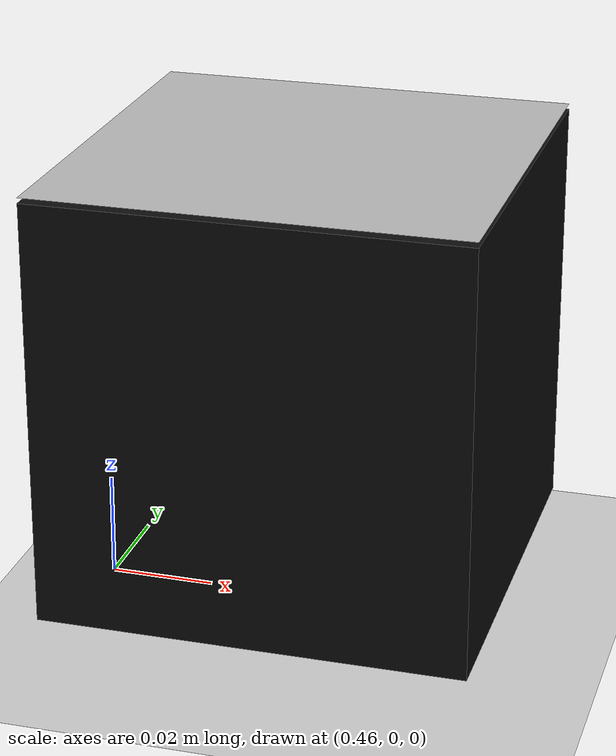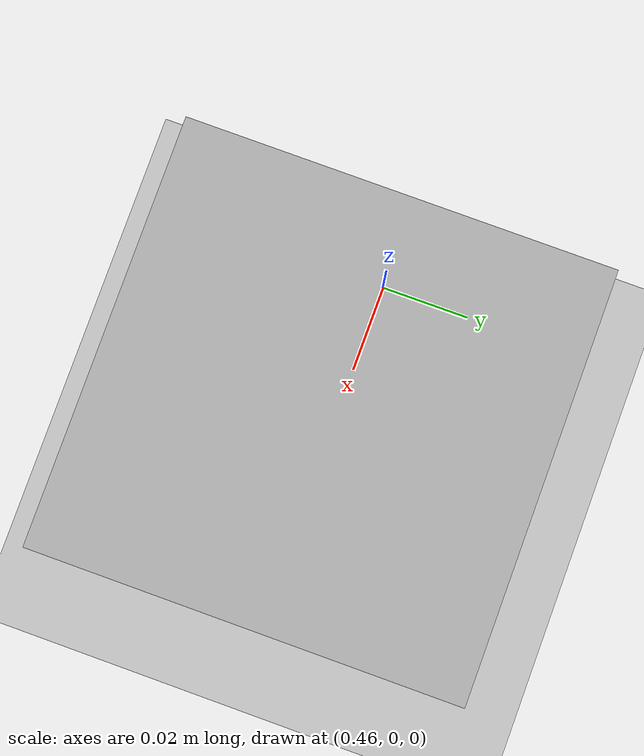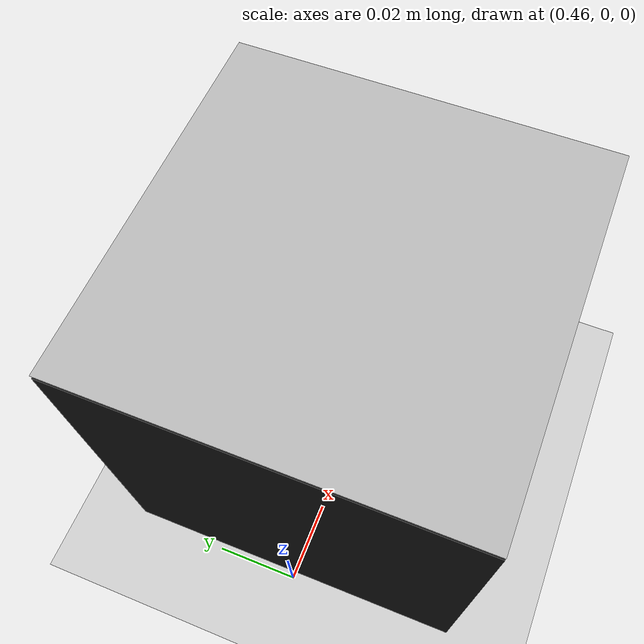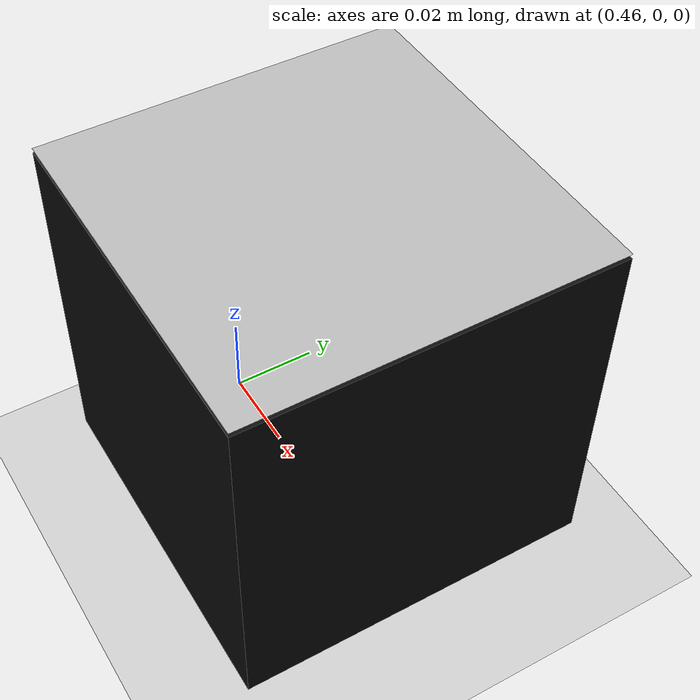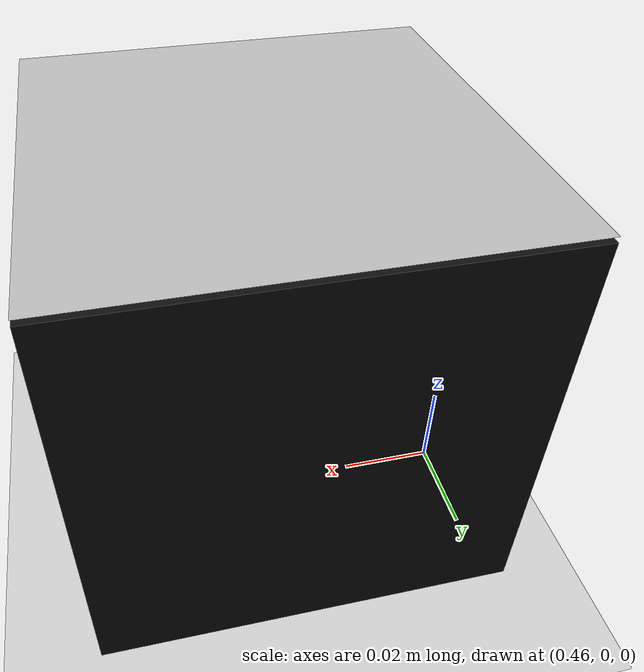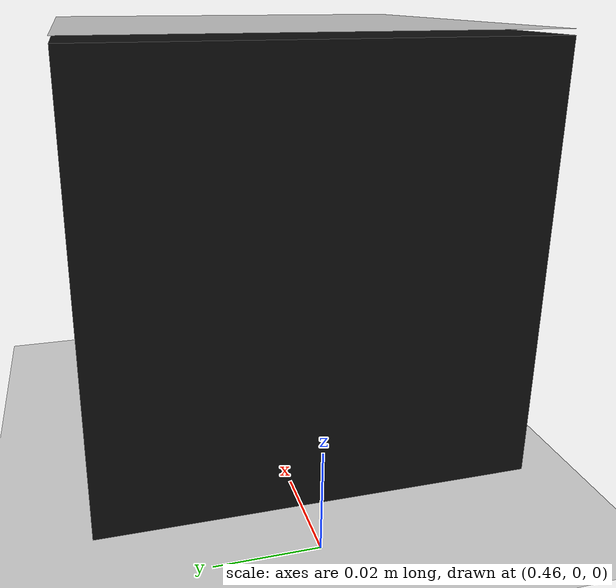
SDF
<sdf version="1.6">
  <world name="empty_with_camera_support">
    <physics name="1ms" type="ignored">
      <max_step_size>0.001</max_step_size>
      <real_time_factor>1.0</real_time_factor>
    </physics>
    <plugin
      filename="ignition-gazebo-physics-system"
      name="gz::sim::systems::Physics">
    </plugin>
    <plugin
      filename="ignition-gazebo-user-commands-system"
      name="gz::sim::systems::UserCommands">
    </plugin>
    <plugin
      filename="ignition-gazebo-scene-broadcaster-system"
      name="gz::sim::systems::SceneBroadcaster">
    </plugin>
    <plugin
      filename="ignition-gazebo-contact-system"
      name="gz::sim::systems::Contact">
    </plugin>
    <plugin
      filename="ignition-gazebo-sensors-system"
      name="gz::sim::systems::Sensors">
      <render_engine>ogre2</render_engine>
    </plugin>

    <light type="directional" name="sun">
      <cast_shadows>true</cast_shadows>
      <pose>0 0 10 0 0 0</pose>
      <diffuse>0.8 0.8 0.8 1</diffuse>
      <specular>0.2 0.2 0.2 1</specular>
      <attenuation>
        <range>1000</range>
        <constant>0.9</constant>
        <linear>0.01</linear>
        <quadratic>0.001</quadratic>
      </attenuation>
      <direction>-0.5 0.1 -0.9</direction>
    </light>

    <model name="ground_plane">
      <static>true</static>
      <link name="link">
        <collision name="collision">
          <geometry>
            <plane>
              <normal>0 0 1</normal>
              <size>100 100</size>
            </plane>
          </geometry>
        </collision>
        <visual name="visual">
          <geometry>
            <plane>
              <normal>0 0 1</normal>
              <size>100 100</size>
            </plane>
          </geometry>
          <material>
            <ambient>0.8 0.8 0.8 1</ambient>
            <diffuse>0.8 0.8 0.8 1</diffuse>
            <specular>0.8 0.8 0.8 1</specular>
          </material>
        </visual>
      </link>
    </model>

    <model name="cubo">
      <static>true</static>
      <pose>0.5 0 0.05 0 0 0</pose>
      <link name="link">
        <visual name="visual">
          <geometry>
            <box>
              <size>0.08 0.08 0.08</size>
            </box>
          </geometry>
          <material>
            <ambient>0.05 0.05 0.05 1</ambient>
            <diffuse>0.05 0.05 0.05 1</diffuse>
            <specular>0.05 0.05 0.05 1</specular>
          </material>
        </visual>
        <collision name="collision">
          <geometry>
            <box>
              <size>0.1 0.1 0.1</size>
            </box>
          </geometry>
        </collision>
        <visual name="aruco_marker">
          <pose>0 0 0.041 0 0 0</pose>
          <geometry>
            <mesh>
              <uri>/root/denso_ws/src/denso_robot_ros2/denso_robot_descriptions/models/aruco_marker.obj</uri>
              <scale>2.0 2.0 1</scale>
            </mesh>
          </geometry>
        </visual>
      </link>
    </model>

  </world>
</sdf>
